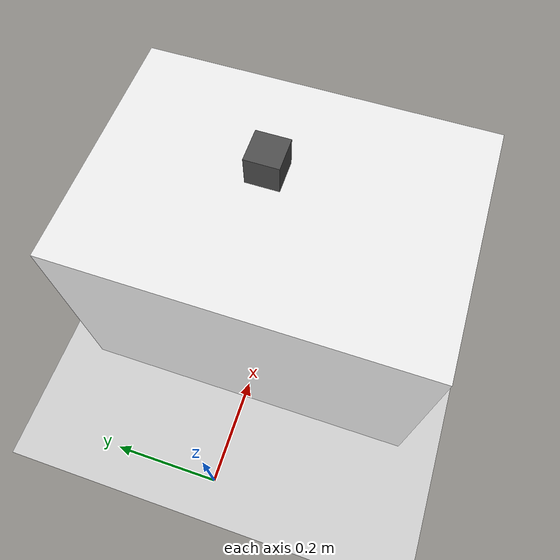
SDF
<?xml version="1.0" ?>
<sdf version="1.5">
  <world name="panda_pick_and_place">
    <!--A global light source-->
    <include>
      <uri>model://sun</uri>
    </include>
    <!--A ground plane-->
    <include>
      <uri>model://ground_plane</uri>
    </include>
    <!--A platform-->
    <include>
      <uri>model://platform</uri>
      <pose>0.4 0 0.209911 0 0 0</pose>
    </include>
    <!--A cube-->
    <include>
      <uri>model://cube</uri>
      <pose>0.4 0 0.419088 0 0 0</pose>
    </include>
    <!--Camera settings-->
    <gui fullscreen='0'>
      <camera name='user_camera'>
        <pose>1.59801 -1.66211 1.29545 -0 0.419643 2.23219</pose>
        <view_controller>orbit</view_controller>
        <projection_type>perspective</projection_type>
      </camera>
    </gui>
    <!--Load Panda joint fixer Gazebo world plugin-->
    <plugin name="panda_joint_locker" filename="libpanda_gazebo.so"/>
  </world>
</sdf>

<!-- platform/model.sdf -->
<sdf version='1.7'>
  <model name='platform'>
    <link name='link'>
      <inertial>
        <mass>10</mass>
        <inertia>
          <ixx>0.166667</ixx>
          <ixy>0</ixy>
          <ixz>0</ixz>
          <iyy>0.166667</iyy>
          <iyz>0</iyz>
          <izz>0.166667</izz>
        </inertia>
      </inertial>
      <self_collide>0</self_collide>
      <enable_wind>0</enable_wind>
      <kinematic>0</kinematic>
      <pose>0 0 0 0 -0 0</pose>
      <visual name='visual'>
        <pose>0 0 0 0 -0 0</pose>
        <geometry>
          <box>
            <size>0.453157 0.642049 0.419823</size>
          </box>
        </geometry>
        <material>
          <script>
            <uri>file://media/materials/scripts/gazebo.material</uri>
            <name>Gazebo/White</name>
          </script>
          <shader type='pixel'/>
        </material>
        <transparency>0</transparency>
        <cast_shadows>1</cast_shadows>
      </visual>
      <collision name='collision'>
        <laser_retro>0</laser_retro>
        <max_contacts>10</max_contacts>
        <pose>0 0 0 0 -0 0</pose>
        <geometry>
          <box>
            <size>0.453157 0.642049 0.419823</size>
          </box>
        </geometry>
        <surface>
          <friction>
            <ode>
              <mu>1</mu>
              <mu2>1</mu2>
              <fdir1>0 0 0</fdir1>
              <slip1>0</slip1>
              <slip2>0</slip2>
            </ode>
            <torsional>
              <coefficient>1</coefficient>
              <patch_radius>0</patch_radius>
              <surface_radius>0</surface_radius>
              <use_patch_radius>1</use_patch_radius>
              <ode>
                <slip>0</slip>
              </ode>
            </torsional>
          </friction>
          <bounce>
            <restitution_coefficient>0</restitution_coefficient>
            <threshold>1e+06</threshold>
          </bounce>
          <contact>
            <collide_without_contact>0</collide_without_contact>
            <collide_without_contact_bitmask>1</collide_without_contact_bitmask>
            <collide_bitmask>1</collide_bitmask>
            <ode>
              <soft_cfm>0</soft_cfm>
              <soft_erp>0.2</soft_erp>
              <kp>1e+13</kp>
              <kd>1</kd>
              <max_vel>0.01</max_vel>
              <min_depth>0</min_depth>
            </ode>
            <bullet>
              <split_impulse>1</split_impulse>
              <split_impulse_penetration_threshold>-0.01</split_impulse_penetration_threshold>
              <soft_cfm>0</soft_cfm>
              <soft_erp>0.2</soft_erp>
              <kp>1e+13</kp>
              <kd>1</kd>
            </bullet>
          </contact>
        </surface>
      </collision>
    </link>
    <static>1</static>
    <allow_auto_disable>1</allow_auto_disable>
  </model>
</sdf>

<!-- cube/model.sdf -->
<sdf version='1.7'>
  <model name='cube'>
    <link name='link'>
      <inertial>
        <pose>0.03 0.03 0.03 0 -0 0</pose>
        <!--NOTE: Uses wood (Longleaf Pine) density (i.e 590 kg/m^3) to calculate the
        mass see https://en.wikipedia.org/wiki/Wood.
        -->
        <mass>0.12743999999999997</mass>
        <inertia>
          <ixx>7.6464e-05</ixx>
          <ixy>0</ixy>
          <ixz>0</ixz>
          <iyy>7.6464e-05</iyy>
          <iyz>0</iyz>
          <izz>7.6464e-05</izz>
        </inertia>
      </inertial>
      <visual name='visual'>
        <pose>0.03 0.03 0.03 0 -0 0</pose>
        <geometry>
          <box>
            <size>0.06 0.06 0.06</size>
          </box>
        </geometry>
        <material>
          <script>
            <uri>file://media/materials/scripts/gazebo.material</uri>
            <name>Gazebo/DarkGrey</name>
          </script>
          <shader type='pixel'/>
        </material>
      </visual>
      <collision name='collision'>
        <pose>0.03 0.03 0.03 0 -0 0</pose>
        <geometry>
          <box>
            <size>0.06 0.06 0.06</size>
          </box>
        </geometry>
        <surface>
          <!--NOTE: Uses dynamic friction of brick on a wood surface
          see https://www.engineeringtoolbox.com/friction-coefficients-d_778.html
          -->
          <friction>
            <ode>
              <mu>0.6</mu>
              <mu2>0.6</mu2>
            </ode>
            <bullet>
              <friction>0.6</friction>
              <friction2>0.6</friction2>
            </bullet>
          </friction>
          <contact>
            <collide_bitmask>1</collide_bitmask>
            <ode>
              <min_depth>0.002</min_depth>
            </ode>
          </contact>
        </surface>
      </collision>
    </link>
  </model>
</sdf>
